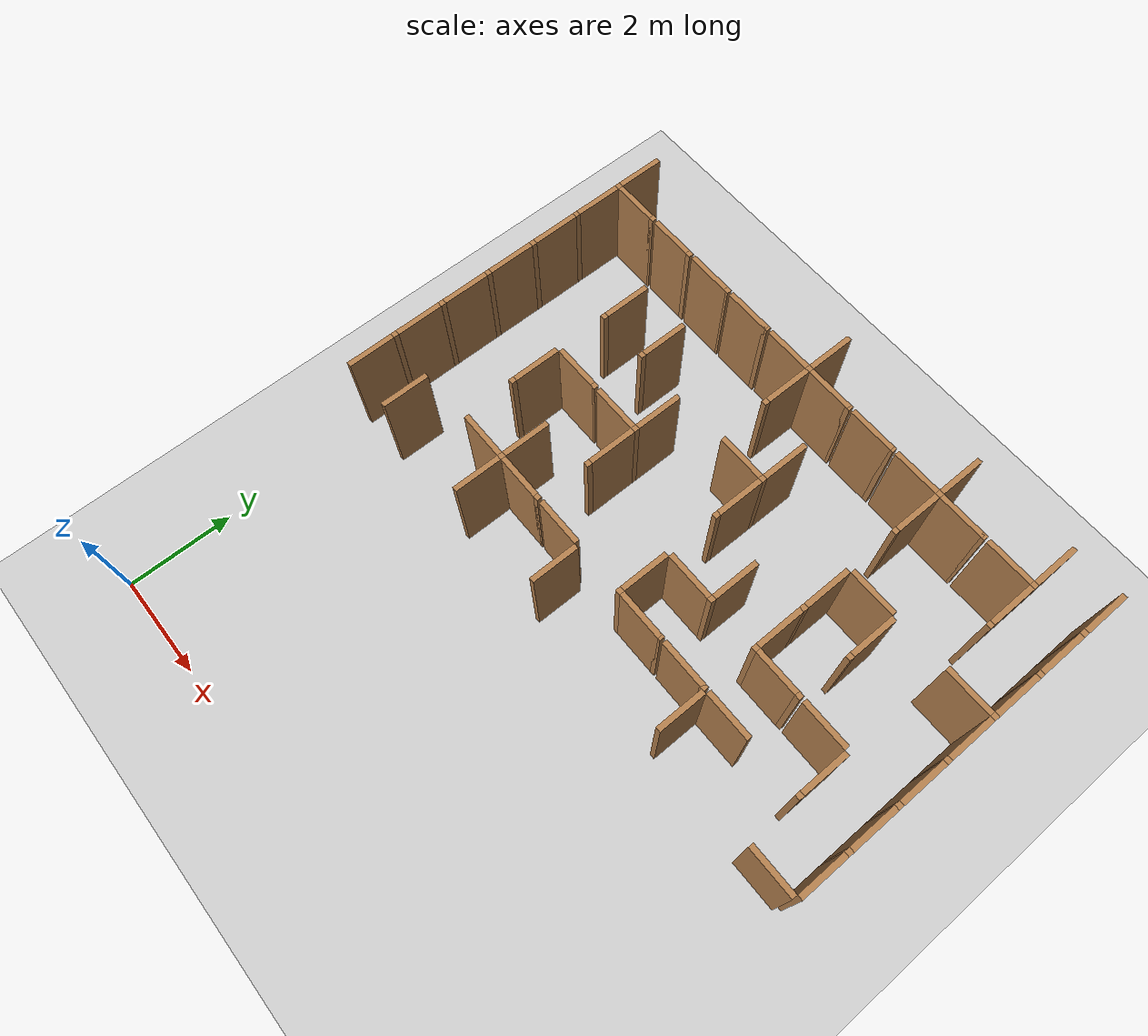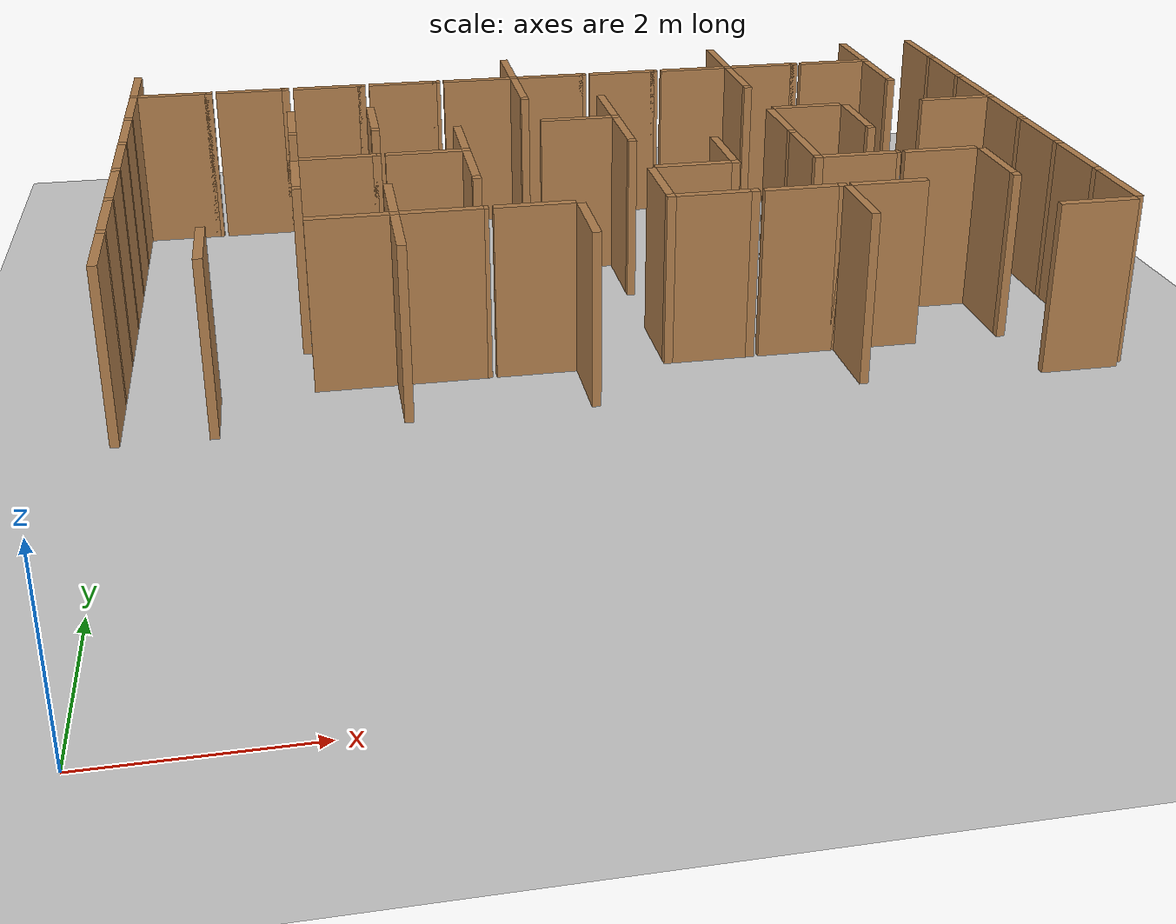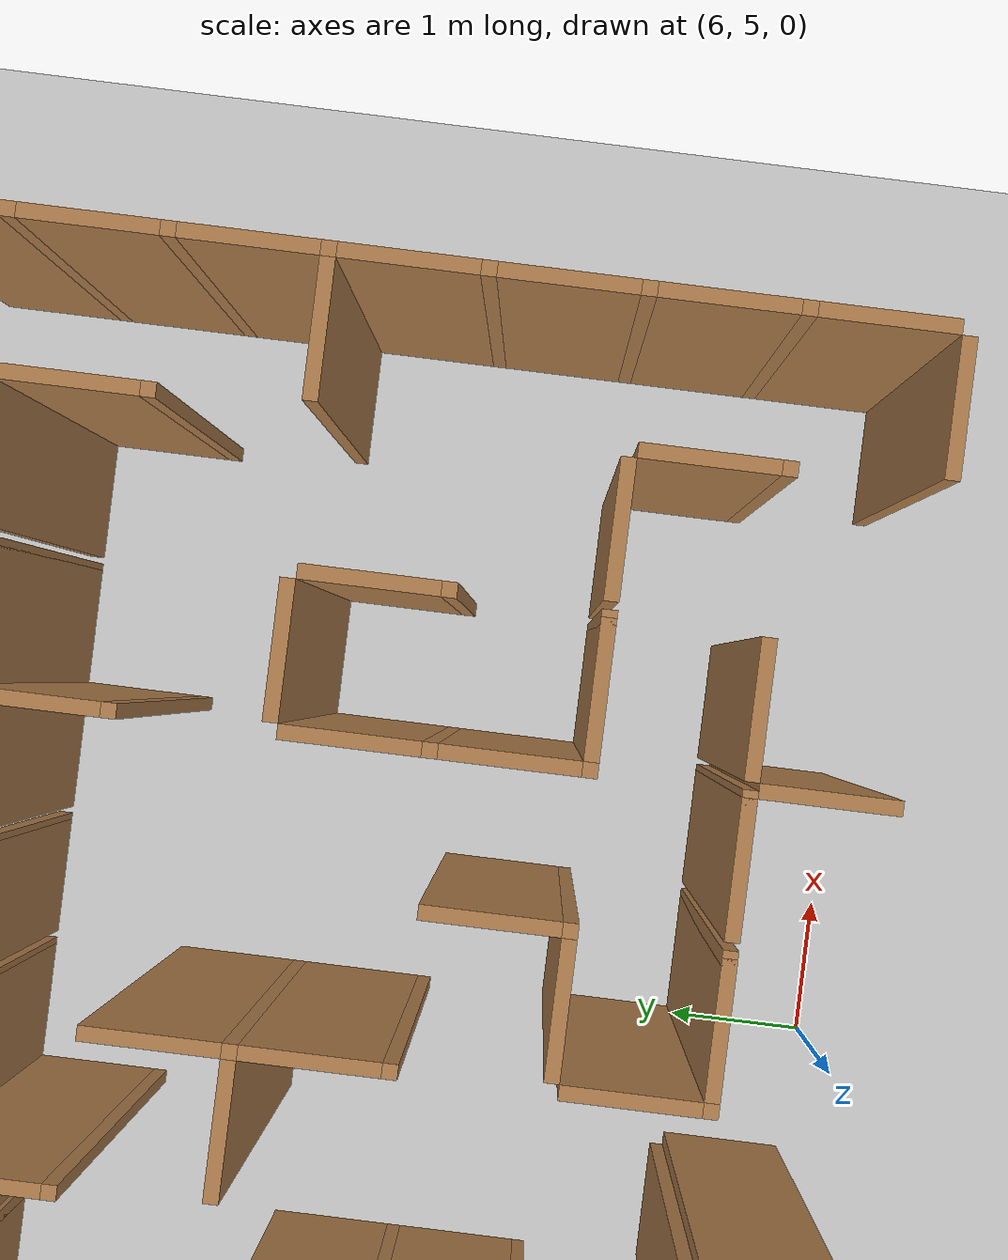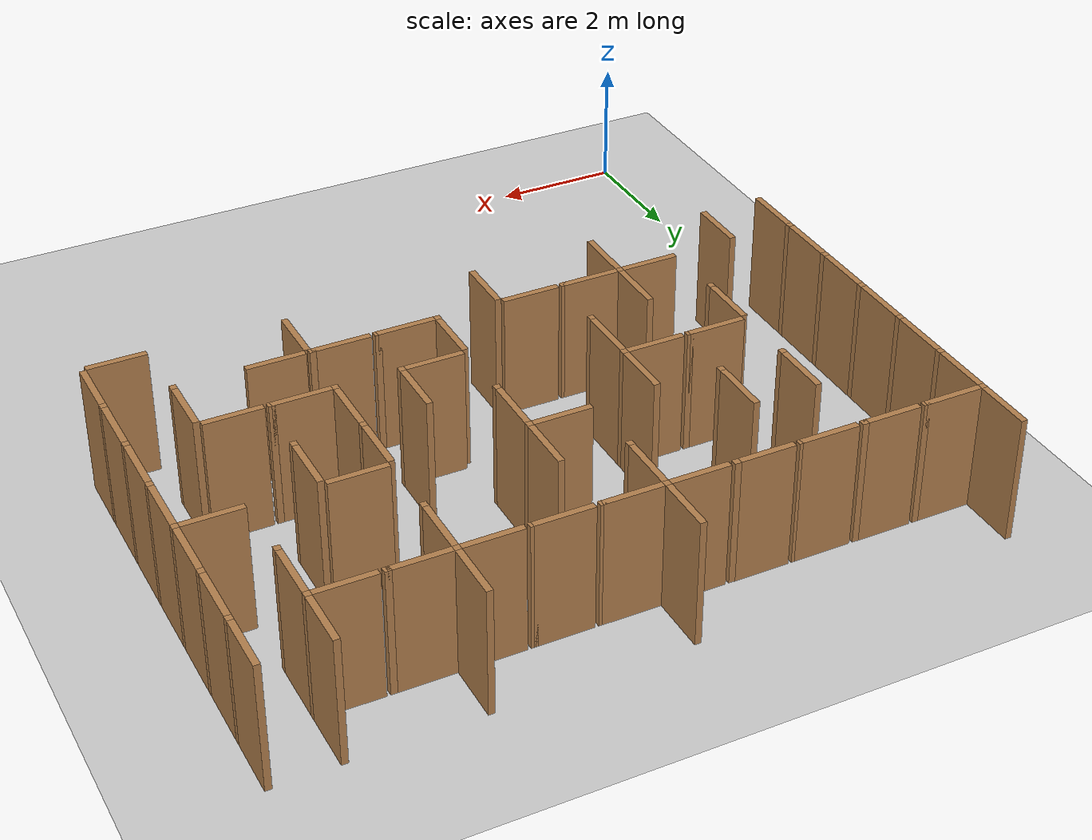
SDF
<sdf version="1.6">
 <world name="default">
  <include><uri>model://sun</uri></include>
  <model name="ground_plane">
   <static>true</static>
   <link name="link">
    <collision name="collision"><geometry><plane><size>12.0 12.0</size></plane></geometry></collision>
    <visual name="visual">
     <cast_shadows>false</cast_shadows>
     <geometry><plane><size>12.0 12.0</size></plane></geometry>
     <material>
      <script><uri>file://media/materials/scripts/gazebo.material</uri><name>Gazebo/Grey</name></script>
     </material>
    </visual>
   </link>
   <pose>6.0 6.0 0 0 0 0</pose>
  </model>
  <model name="vwall_5_0">
   <pose>0.0 5.5 1.0 0 0 0</pose>
   <link name="link">
    <collision name="collision"><geometry><box><size>0.1 0.9 2</size></box></geometry></collision>
    <visual name="visual">
     <geometry><box><size>0.1 0.9 2</size></box></geometry>
     <material>
      <script><uri>file://media/materials/scripts/gazebo.material</uri><name>Gazebo/Wood</name></script>
     </material>
    </visual>
   </link>
  </model>
  <model name="vwall_5_1">
   <pose>1.0 5.5 1.0 0 0 0</pose>
   <link name="link">
    <collision name="collision"><geometry><box><size>0.1 0.9 2</size></box></geometry></collision>
    <visual name="visual">
     <geometry><box><size>0.1 0.9 2</size></box></geometry>
     <material>
      <script><uri>file://media/materials/scripts/gazebo.material</uri><name>Gazebo/Wood</name></script>
     </material>
    </visual>
   </link>
  </model>
  <model name="vwall_5_3">
   <pose>3.0 5.5 1.0 0 0 0</pose>
   <link name="link">
    <collision name="collision"><geometry><box><size>0.1 0.9 2</size></box></geometry></collision>
    <visual name="visual">
     <geometry><box><size>0.1 0.9 2</size></box></geometry>
     <material>
      <script><uri>file://media/materials/scripts/gazebo.material</uri><name>Gazebo/Wood</name></script>
     </material>
    </visual>
   </link>
  </model>
  <model name="vwall_5_5">
   <pose>5.0 5.5 1.0 0 0 0</pose>
   <link name="link">
    <collision name="collision"><geometry><box><size>0.1 0.9 2</size></box></geometry></collision>
    <visual name="visual">
     <geometry><box><size>0.1 0.9 2</size></box></geometry>
     <material>
      <script><uri>file://media/materials/scripts/gazebo.material</uri><name>Gazebo/Wood</name></script>
     </material>
    </visual>
   </link>
  </model>
  <model name="vwall_5_8">
   <pose>8.0 5.5 1.0 0 0 0</pose>
   <link name="link">
    <collision name="collision"><geometry><box><size>0.1 0.9 2</size></box></geometry></collision>
    <visual name="visual">
     <geometry><box><size>0.1 0.9 2</size></box></geometry>
     <material>
      <script><uri>file://media/materials/scripts/gazebo.material</uri><name>Gazebo/Wood</name></script>
     </material>
    </visual>
   </link>
  </model>
  <model name="vwall_5_11">
   <pose>11.0 5.5 1.0 0 0 0</pose>
   <link name="link">
    <collision name="collision"><geometry><box><size>0.1 0.9 2</size></box></geometry></collision>
    <visual name="visual">
     <geometry><box><size>0.1 0.9 2</size></box></geometry>
     <material>
      <script><uri>file://media/materials/scripts/gazebo.material</uri><name>Gazebo/Wood</name></script>
     </material>
    </visual>
   </link>
  </model>
  <model name="vwall_6_0">
   <pose>0.0 6.5 1.0 0 0 0</pose>
   <link name="link">
    <collision name="collision"><geometry><box><size>0.1 0.9 2</size></box></geometry></collision>
    <visual name="visual">
     <geometry><box><size>0.1 0.9 2</size></box></geometry>
     <material>
      <script><uri>file://media/materials/scripts/gazebo.material</uri><name>Gazebo/Wood</name></script>
     </material>
    </visual>
   </link>
  </model>
  <model name="joint_0.0_6.0">
   <pose>0.0 6.0 1.0 0 0 0</pose>
   <link name="link">
    <collision name="collision"><geometry><box><size>0.1 0.1 2</size></box></geometry></collision>
    <visual name="visual">
     <geometry><box><size>0.1 0.1 2</size></box></geometry>
     <material>
      <script><uri>file://media/materials/scripts/gazebo.material</uri><name>Gazebo/Wood</name></script>
     </material>
    </visual>
   </link>
  </model>
  <model name="vwall_6_3">
   <pose>3.0 6.5 1.0 0 0 0</pose>
   <link name="link">
    <collision name="collision"><geometry><box><size>0.1 0.9 2</size></box></geometry></collision>
    <visual name="visual">
     <geometry><box><size>0.1 0.9 2</size></box></geometry>
     <material>
      <script><uri>file://media/materials/scripts/gazebo.material</uri><name>Gazebo/Wood</name></script>
     </material>
    </visual>
   </link>
  </model>
  <model name="joint_3.0_6.0">
   <pose>3.0 6.0 1.0 0 0 0</pose>
   <link name="link">
    <collision name="collision"><geometry><box><size>0.1 0.1 2</size></box></geometry></collision>
    <visual name="visual">
     <geometry><box><size>0.1 0.1 2</size></box></geometry>
     <material>
      <script><uri>file://media/materials/scripts/gazebo.material</uri><name>Gazebo/Wood</name></script>
     </material>
    </visual>
   </link>
  </model>
  <model name="vwall_6_6">
   <pose>6.0 6.5 1.0 0 0 0</pose>
   <link name="link">
    <collision name="collision"><geometry><box><size>0.1 0.9 2</size></box></geometry></collision>
    <visual name="visual">
     <geometry><box><size>0.1 0.9 2</size></box></geometry>
     <material>
      <script><uri>file://media/materials/scripts/gazebo.material</uri><name>Gazebo/Wood</name></script>
     </material>
    </visual>
   </link>
  </model>
  <model name="joint_6.0_6.0">
   <pose>6.0 6.0 1.0 0 0 0</pose>
   <link name="link">
    <collision name="collision"><geometry><box><size>0.1 0.1 2</size></box></geometry></collision>
    <visual name="visual">
     <geometry><box><size>0.1 0.1 2</size></box></geometry>
     <material>
      <script><uri>file://media/materials/scripts/gazebo.material</uri><name>Gazebo/Wood</name></script>
     </material>
    </visual>
   </link>
  </model>
  <model name="vwall_6_10">
   <pose>10.0 6.5 1.0 0 0 0</pose>
   <link name="link">
    <collision name="collision"><geometry><box><size>0.1 0.9 2</size></box></geometry></collision>
    <visual name="visual">
     <geometry><box><size>0.1 0.9 2</size></box></geometry>
     <material>
      <script><uri>file://media/materials/scripts/gazebo.material</uri><name>Gazebo/Wood</name></script>
     </material>
    </visual>
   </link>
  </model>
  <model name="joint_10.0_6.0">
   <pose>10.0 6.0 1.0 0 0 0</pose>
   <link name="link">
    <collision name="collision"><geometry><box><size>0.1 0.1 2</size></box></geometry></collision>
    <visual name="visual">
     <geometry><box><size>0.1 0.1 2</size></box></geometry>
     <material>
      <script><uri>file://media/materials/scripts/gazebo.material</uri><name>Gazebo/Wood</name></script>
     </material>
    </visual>
   </link>
  </model>
  <model name="vwall_6_11">
   <pose>11.0 6.5 1.0 0 0 0</pose>
   <link name="link">
    <collision name="collision"><geometry><box><size>0.1 0.9 2</size></box></geometry></collision>
    <visual name="visual">
     <geometry><box><size>0.1 0.9 2</size></box></geometry>
     <material>
      <script><uri>file://media/materials/scripts/gazebo.material</uri><name>Gazebo/Wood</name></script>
     </material>
    </visual>
   </link>
  </model>
  <model name="joint_11.0_6.0">
   <pose>11.0 6.0 1.0 0 0 0</pose>
   <link name="link">
    <collision name="collision"><geometry><box><size>0.1 0.1 2</size></box></geometry></collision>
    <visual name="visual">
     <geometry><box><size>0.1 0.1 2</size></box></geometry>
     <material>
      <script><uri>file://media/materials/scripts/gazebo.material</uri><name>Gazebo/Wood</name></script>
     </material>
    </visual>
   </link>
  </model>
  <model name="vwall_7_0">
   <pose>0.0 7.5 1.0 0 0 0</pose>
   <link name="link">
    <collision name="collision"><geometry><box><size>0.1 0.9 2</size></box></geometry></collision>
    <visual name="visual">
     <geometry><box><size>0.1 0.9 2</size></box></geometry>
     <material>
      <script><uri>file://media/materials/scripts/gazebo.material</uri><name>Gazebo/Wood</name></script>
     </material>
    </visual>
   </link>
  </model>
  <model name="joint_0.0_7.0">
   <pose>0.0 7.0 1.0 0 0 0</pose>
   <link name="link">
    <collision name="collision"><geometry><box><size>0.1 0.1 2</size></box></geometry></collision>
    <visual name="visual">
     <geometry><box><size>0.1 0.1 2</size></box></geometry>
     <material>
      <script><uri>file://media/materials/scripts/gazebo.material</uri><name>Gazebo/Wood</name></script>
     </material>
    </visual>
   </link>
  </model>
  <model name="vwall_7_2">
   <pose>2.0 7.5 1.0 0 0 0</pose>
   <link name="link">
    <collision name="collision"><geometry><box><size>0.1 0.9 2</size></box></geometry></collision>
    <visual name="visual">
     <geometry><box><size>0.1 0.9 2</size></box></geometry>
     <material>
      <script><uri>file://media/materials/scripts/gazebo.material</uri><name>Gazebo/Wood</name></script>
     </material>
    </visual>
   </link>
  </model>
  <model name="joint_2.0_7.0">
   <pose>2.0 7.0 1.0 0 0 0</pose>
   <link name="link">
    <collision name="collision"><geometry><box><size>0.1 0.1 2</size></box></geometry></collision>
    <visual name="visual">
     <geometry><box><size>0.1 0.1 2</size></box></geometry>
     <material>
      <script><uri>file://media/materials/scripts/gazebo.material</uri><name>Gazebo/Wood</name></script>
     </material>
    </visual>
   </link>
  </model>
  <model name="vwall_7_4">
   <pose>4.0 7.5 1.0 0 0 0</pose>
   <link name="link">
    <collision name="collision"><geometry><box><size>0.1 0.9 2</size></box></geometry></collision>
    <visual name="visual">
     <geometry><box><size>0.1 0.9 2</size></box></geometry>
     <material>
      <script><uri>file://media/materials/scripts/gazebo.material</uri><name>Gazebo/Wood</name></script>
     </material>
    </visual>
   </link>
  </model>
  <model name="joint_4.0_7.0">
   <pose>4.0 7.0 1.0 0 0 0</pose>
   <link name="link">
    <collision name="collision"><geometry><box><size>0.1 0.1 2</size></box></geometry></collision>
    <visual name="visual">
     <geometry><box><size>0.1 0.1 2</size></box></geometry>
     <material>
      <script><uri>file://media/materials/scripts/gazebo.material</uri><name>Gazebo/Wood</name></script>
     </material>
    </visual>
   </link>
  </model>
  <model name="vwall_7_7">
   <pose>7.0 7.5 1.0 0 0 0</pose>
   <link name="link">
    <collision name="collision"><geometry><box><size>0.1 0.9 2</size></box></geometry></collision>
    <visual name="visual">
     <geometry><box><size>0.1 0.9 2</size></box></geometry>
     <material>
      <script><uri>file://media/materials/scripts/gazebo.material</uri><name>Gazebo/Wood</name></script>
     </material>
    </visual>
   </link>
  </model>
  <model name="joint_7.0_7.0">
   <pose>7.0 7.0 1.0 0 0 0</pose>
   <link name="link">
    <collision name="collision"><geometry><box><size>0.1 0.1 2</size></box></geometry></collision>
    <visual name="visual">
     <geometry><box><size>0.1 0.1 2</size></box></geometry>
     <material>
      <script><uri>file://media/materials/scripts/gazebo.material</uri><name>Gazebo/Wood</name></script>
     </material>
    </visual>
   </link>
  </model>
  <model name="vwall_7_8">
   <pose>8.0 7.5 1.0 0 0 0</pose>
   <link name="link">
    <collision name="collision"><geometry><box><size>0.1 0.9 2</size></box></geometry></collision>
    <visual name="visual">
     <geometry><box><size>0.1 0.9 2</size></box></geometry>
     <material>
      <script><uri>file://media/materials/scripts/gazebo.material</uri><name>Gazebo/Wood</name></script>
     </material>
    </visual>
   </link>
  </model>
  <model name="joint_8.0_7.0">
   <pose>8.0 7.0 1.0 0 0 0</pose>
   <link name="link">
    <collision name="collision"><geometry><box><size>0.1 0.1 2</size></box></geometry></collision>
    <visual name="visual">
     <geometry><box><size>0.1 0.1 2</size></box></geometry>
     <material>
      <script><uri>file://media/materials/scripts/gazebo.material</uri><name>Gazebo/Wood</name></script>
     </material>
    </visual>
   </link>
  </model>
  <model name="vwall_7_11">
   <pose>11.0 7.5 1.0 0 0 0</pose>
   <link name="link">
    <collision name="collision"><geometry><box><size>0.1 0.9 2</size></box></geometry></collision>
    <visual name="visual">
     <geometry><box><size>0.1 0.9 2</size></box></geometry>
     <material>
      <script><uri>file://media/materials/scripts/gazebo.material</uri><name>Gazebo/Wood</name></script>
     </material>
    </visual>
   </link>
  </model>
  <model name="joint_11.0_7.0">
   <pose>11.0 7.0 1.0 0 0 0</pose>
   <link name="link">
    <collision name="collision"><geometry><box><size>0.1 0.1 2</size></box></geometry></collision>
    <visual name="visual">
     <geometry><box><size>0.1 0.1 2</size></box></geometry>
     <material>
      <script><uri>file://media/materials/scripts/gazebo.material</uri><name>Gazebo/Wood</name></script>
     </material>
    </visual>
   </link>
  </model>
  <model name="vwall_8_0">
   <pose>0.0 8.5 1.0 0 0 0</pose>
   <link name="link">
    <collision name="collision"><geometry><box><size>0.1 0.9 2</size></box></geometry></collision>
    <visual name="visual">
     <geometry><box><size>0.1 0.9 2</size></box></geometry>
     <material>
      <script><uri>file://media/materials/scripts/gazebo.material</uri><name>Gazebo/Wood</name></script>
     </material>
    </visual>
   </link>
  </model>
  <model name="joint_0.0_8.0">
   <pose>0.0 8.0 1.0 0 0 0</pose>
   <link name="link">
    <collision name="collision"><geometry><box><size>0.1 0.1 2</size></box></geometry></collision>
    <visual name="visual">
     <geometry><box><size>0.1 0.1 2</size></box></geometry>
     <material>
      <script><uri>file://media/materials/scripts/gazebo.material</uri><name>Gazebo/Wood</name></script>
     </material>
    </visual>
   </link>
  </model>
  <model name="vwall_8_4">
   <pose>4.0 8.5 1.0 0 0 0</pose>
   <link name="link">
    <collision name="collision"><geometry><box><size>0.1 0.9 2</size></box></geometry></collision>
    <visual name="visual">
     <geometry><box><size>0.1 0.9 2</size></box></geometry>
     <material>
      <script><uri>file://media/materials/scripts/gazebo.material</uri><name>Gazebo/Wood</name></script>
     </material>
    </visual>
   </link>
  </model>
  <model name="joint_4.0_8.0">
   <pose>4.0 8.0 1.0 0 0 0</pose>
   <link name="link">
    <collision name="collision"><geometry><box><size>0.1 0.1 2</size></box></geometry></collision>
    <visual name="visual">
     <geometry><box><size>0.1 0.1 2</size></box></geometry>
     <material>
      <script><uri>file://media/materials/scripts/gazebo.material</uri><name>Gazebo/Wood</name></script>
     </material>
    </visual>
   </link>
  </model>
  <model name="vwall_8_6">
   <pose>6.0 8.5 1.0 0 0 0</pose>
   <link name="link">
    <collision name="collision"><geometry><box><size>0.1 0.9 2</size></box></geometry></collision>
    <visual name="visual">
     <geometry><box><size>0.1 0.9 2</size></box></geometry>
     <material>
      <script><uri>file://media/materials/scripts/gazebo.material</uri><name>Gazebo/Wood</name></script>
     </material>
    </visual>
   </link>
  </model>
  <model name="joint_6.0_8.0">
   <pose>6.0 8.0 1.0 0 0 0</pose>
   <link name="link">
    <collision name="collision"><geometry><box><size>0.1 0.1 2</size></box></geometry></collision>
    <visual name="visual">
     <geometry><box><size>0.1 0.1 2</size></box></geometry>
     <material>
      <script><uri>file://media/materials/scripts/gazebo.material</uri><name>Gazebo/Wood</name></script>
     </material>
    </visual>
   </link>
  </model>
  <model name="vwall_8_8">
   <pose>8.0 8.5 1.0 0 0 0</pose>
   <link name="link">
    <collision name="collision"><geometry><box><size>0.1 0.9 2</size></box></geometry></collision>
    <visual name="visual">
     <geometry><box><size>0.1 0.9 2</size></box></geometry>
     <material>
      <script><uri>file://media/materials/scripts/gazebo.material</uri><name>Gazebo/Wood</name></script>
     </material>
    </visual>
   </link>
  </model>
  <model name="joint_8.0_8.0">
   <pose>8.0 8.0 1.0 0 0 0</pose>
   <link name="link">
    <collision name="collision"><geometry><box><size>0.1 0.1 2</size></box></geometry></collision>
    <visual name="visual">
     <geometry><box><size>0.1 0.1 2</size></box></geometry>
     <material>
      <script><uri>file://media/materials/scripts/gazebo.material</uri><name>Gazebo/Wood</name></script>
     </material>
    </visual>
   </link>
  </model>
  <model name="vwall_8_9">
   <pose>9.0 8.5 1.0 0 0 0</pose>
   <link name="link">
    <collision name="collision"><geometry><box><size>0.1 0.9 2</size></box></geometry></collision>
    <visual name="visual">
     <geometry><box><size>0.1 0.9 2</size></box></geometry>
     <material>
      <script><uri>file://media/materials/scripts/gazebo.material</uri><name>Gazebo/Wood</name></script>
     </material>
    </visual>
   </link>
  </model>
  <model name="joint_9.0_8.0">
   <pose>9.0 8.0 1.0 0 0 0</pose>
   <link name="link">
    <collision name="collision"><geometry><box><size>0.1 0.1 2</size></box></geometry></collision>
    <visual name="visual">
     <geometry><box><size>0.1 0.1 2</size></box></geometry>
     <material>
      <script><uri>file://media/materials/scripts/gazebo.material</uri><name>Gazebo/Wood</name></script>
     </material>
    </visual>
   </link>
  </model>
  <model name="vwall_8_11">
   <pose>11.0 8.5 1.0 0 0 0</pose>
   <link name="link">
    <collision name="collision"><geometry><box><size>0.1 0.9 2</size></box></geometry></collision>
    <visual name="visual">
     <geometry><box><size>0.1 0.9 2</size></box></geometry>
     <material>
      <script><uri>file://media/materials/scripts/gazebo.material</uri><name>Gazebo/Wood</name></script>
     </material>
    </visual>
   </link>
  </model>
  <model name="joint_11.0_8.0">
   <pose>11.0 8.0 1.0 0 0 0</pose>
   <link name="link">
    <collision name="collision"><geometry><box><size>0.1 0.1 2</size></box></geometry></collision>
    <visual name="visual">
     <geometry><box><size>0.1 0.1 2</size></box></geometry>
     <material>
      <script><uri>file://media/materials/scripts/gazebo.material</uri><name>Gazebo/Wood</name></script>
     </material>
    </visual>
   </link>
  </model>
  <model name="vwall_9_0">
   <pose>0.0 9.5 1.0 0 0 0</pose>
   <link name="link">
    <collision name="collision"><geometry><box><size>0.1 0.9 2</size></box></geometry></collision>
    <visual name="visual">
     <geometry><box><size>0.1 0.9 2</size></box></geometry>
     <material>
      <script><uri>file://media/materials/scripts/gazebo.material</uri><name>Gazebo/Wood</name></script>
     </material>
    </visual>
   </link>
  </model>
  <model name="joint_0.0_9.0">
   <pose>0.0 9.0 1.0 0 0 0</pose>
   <link name="link">
    <collision name="collision"><geometry><box><size>0.1 0.1 2</size></box></geometry></collision>
    <visual name="visual">
     <geometry><box><size>0.1 0.1 2</size></box></geometry>
     <material>
      <script><uri>file://media/materials/scripts/gazebo.material</uri><name>Gazebo/Wood</name></script>
     </material>
    </visual>
   </link>
  </model>
  <model name="vwall_9_2">
   <pose>2.0 9.5 1.0 0 0 0</pose>
   <link name="link">
    <collision name="collision"><geometry><box><size>0.1 0.9 2</size></box></geometry></collision>
    <visual name="visual">
     <geometry><box><size>0.1 0.9 2</size></box></geometry>
     <material>
      <script><uri>file://media/materials/scripts/gazebo.material</uri><name>Gazebo/Wood</name></script>
     </material>
    </visual>
   </link>
  </model>
  <model name="joint_2.0_9.0">
   <pose>2.0 9.0 1.0 0 0 0</pose>
   <link name="link">
    <collision name="collision"><geometry><box><size>0.1 0.1 2</size></box></geometry></collision>
    <visual name="visual">
     <geometry><box><size>0.1 0.1 2</size></box></geometry>
     <material>
      <script><uri>file://media/materials/scripts/gazebo.material</uri><name>Gazebo/Wood</name></script>
     </material>
    </visual>
   </link>
  </model>
  <model name="vwall_9_3">
   <pose>3.0 9.5 1.0 0 0 0</pose>
   <link name="link">
    <collision name="collision"><geometry><box><size>0.1 0.9 2</size></box></geometry></collision>
    <visual name="visual">
     <geometry><box><size>0.1 0.9 2</size></box></geometry>
     <material>
      <script><uri>file://media/materials/scripts/gazebo.material</uri><name>Gazebo/Wood</name></script>
     </material>
    </visual>
   </link>
  </model>
  <model name="joint_3.0_9.0">
   <pose>3.0 9.0 1.0 0 0 0</pose>
   <link name="link">
    <collision name="collision"><geometry><box><size>0.1 0.1 2</size></box></geometry></collision>
    <visual name="visual">
     <geometry><box><size>0.1 0.1 2</size></box></geometry>
     <material>
      <script><uri>file://media/materials/scripts/gazebo.material</uri><name>Gazebo/Wood</name></script>
     </material>
    </visual>
   </link>
  </model>
  <model name="vwall_9_6">
   <pose>6.0 9.5 1.0 0 0 0</pose>
   <link name="link">
    <collision name="collision"><geometry><box><size>0.1 0.9 2</size></box></geometry></collision>
    <visual name="visual">
     <geometry><box><size>0.1 0.9 2</size></box></geometry>
     <material>
      <script><uri>file://media/materials/scripts/gazebo.material</uri><name>Gazebo/Wood</name></script>
     </material>
    </visual>
   </link>
  </model>
  <model name="joint_6.0_9.0">
   <pose>6.0 9.0 1.0 0 0 0</pose>
   <link name="link">
    <collision name="collision"><geometry><box><size>0.1 0.1 2</size></box></geometry></collision>
    <visual name="visual">
     <geometry><box><size>0.1 0.1 2</size></box></geometry>
     <material>
      <script><uri>file://media/materials/scripts/gazebo.material</uri><name>Gazebo/Wood</name></script>
     </material>
    </visual>
   </link>
  </model>
  <model name="vwall_9_11">
   <pose>11.0 9.5 1.0 0 0 0</pose>
   <link name="link">
    <collision name="collision"><geometry><box><size>0.1 0.9 2</size></box></geometry></collision>
    <visual name="visual">
     <geometry><box><size>0.1 0.9 2</size></box></geometry>
     <material>
      <script><uri>file://media/materials/scripts/gazebo.material</uri><name>Gazebo/Wood</name></script>
     </material>
    </visual>
   </link>
  </model>
  <model name="joint_11.0_9.0">
   <pose>11.0 9.0 1.0 0 0 0</pose>
   <link name="link">
    <collision name="collision"><geometry><box><size>0.1 0.1 2</size></box></geometry></collision>
    <visual name="visual">
     <geometry><box><size>0.1 0.1 2</size></box></geometry>
     <material>
      <script><uri>file://media/materials/scripts/gazebo.material</uri><name>Gazebo/Wood</name></script>
     </material>
    </visual>
   </link>
  </model>
  <model name="vwall_10_0">
   <pose>0.0 10.5 1.0 0 0 0</pose>
   <link name="link">
    <collision name="collision"><geometry><box><size>0.1 0.9 2</size></box></geometry></collision>
    <visual name="visual">
     <geometry><box><size>0.1 0.9 2</size></box></geometry>
     <material>
      <script><uri>file://media/materials/scripts/gazebo.material</uri><name>Gazebo/Wood</name></script>
     </material>
    </visual>
   </link>
  </model>
  <model name="joint_0.0_10.0">
   <pose>0.0 10.0 1.0 0 0 0</pose>
   <link name="link">
    <collision name="collision"><geometry><box><size>0.1 0.1 2</size></box></geometry></collision>
    <visual name="visual">
     <geometry><box><size>0.1 0.1 2</size></box></geometry>
     <material>
      <script><uri>file://media/materials/scripts/gazebo.material</uri><name>Gazebo/Wood</name></script>
     </material>
    </visual>
   </link>
  </model>
  <model name="vwall_10_5">
   <pose>5.0 10.5 1.0 0 0 0</pose>
   <link name="link">
    <collision name="collision"><geometry><box><size>0.1 0.9 2</size></box></geometry></collision>
    <visual name="visual">
     <geometry><box><size>0.1 0.9 2</size></box></geometry>
     <material>
      <script><uri>file://media/materials/scripts/gazebo.material</uri><name>Gazebo/Wood</name></script>
     </material>
    </visual>
   </link>
  </model>
  <model name="joint_5.0_10.0">
   <pose>5.0 10.0 1.0 0 0 0</pose>
   <link name="link">
    <collision name="collision"><geometry><box><size>0.1 0.1 2</size></box></geometry></collision>
    <visual name="visual">
     <geometry><box><size>0.1 0.1 2</size></box></geometry>
     <material>
      <script><uri>file://media/materials/scripts/gazebo.material</uri><name>Gazebo/Wood</name></script>
     </material>
    </visual>
   </link>
  </model>
  <model name="vwall_10_8">
   <pose>8.0 10.5 1.0 0 0 0</pose>
   <link name="link">
    <collision name="collision"><geometry><box><size>0.1 0.9 2</size></box></geometry></collision>
    <visual name="visual">
     <geometry><box><size>0.1 0.9 2</size></box></geometry>
     <material>
      <script><uri>file://media/materials/scripts/gazebo.material</uri><name>Gazebo/Wood</name></script>
     </material>
    </visual>
   </link>
  </model>
  <model name="joint_8.0_10.0">
   <pose>8.0 10.0 1.0 0 0 0</pose>
   <link name="link">
    <collision name="collision"><geometry><box><size>0.1 0.1 2</size></box></geometry></collision>
    <visual name="visual">
     <geometry><box><size>0.1 0.1 2</size></box></geometry>
     <material>
      <script><uri>file://media/materials/scripts/gazebo.material</uri><name>Gazebo/Wood</name></script>
     </material>
    </visual>
   </link>
  </model>
  <model name="vwall_10_10">
   <pose>10.0 10.5 1.0 0 0 0</pose>
   <link name="link">
    <collision name="collision"><geometry><box><size>0.1 0.9 2</size></box></geometry></collision>
    <visual name="visual">
     <geometry><box><size>0.1 0.9 2</size></box></geometry>
     <material>
      <script><uri>file://media/materials/scripts/gazebo.material</uri><name>Gazebo/Wood</name></script>
     </material>
    </visual>
   </link>
  </model>
  <model name="joint_10.0_10.0">
   <pose>10.0 10.0 1.0 0 0 0</pose>
   <link name="link">
    <collision name="collision"><geometry><box><size>0.1 0.1 2</size></box></geometry></collision>
    <visual name="visual">
     <geometry><box><size>0.1 0.1 2</size></box></geometry>
     <material>
      <script><uri>file://media/materials/scripts/gazebo.material</uri><name>Gazebo/Wood</name></script>
     </material>
    </visual>
   </link>
  </model>
  <model name="vwall_10_11">
   <pose>11.0 10.5 1.0 0 0 0</pose>
   <link name="link">
    <collision name="collision"><geometry><box><size>0.1 0.9 2</size></box></geometry></collision>
    <visual name="visual">
     <geometry><box><size>0.1 0.9 2</size></box></geometry>
     <material>
      <script><uri>file://media/materials/scripts/gazebo.material</uri><name>Gazebo/Wood</name></script>
     </material>
    </visual>
   </link>
  </model>
  <model name="joint_11.0_10.0">
   <pose>11.0 10.0 1.0 0 0 0</pose>
   <link name="link">
    <collision name="collision"><geometry><box><size>0.1 0.1 2</size></box></geometry></collision>
    <visual name="visual">
     <geometry><box><size>0.1 0.1 2</size></box></geometry>
     <material>
      <script><uri>file://media/materials/scripts/gazebo.material</uri><name>Gazebo/Wood</name></script>
     </material>
    </visual>
   </link>
  </model>
  <model name="vwall_11_0">
   <pose>0.0 11.5 1.0 0 0 0</pose>
   <link name="link">
    <collision name="collision"><geometry><box><size>0.1 0.9 2</size></box></geometry></collision>
    <visual name="visual">
     <geometry><box><size>0.1 0.9 2</size></box></geometry>
     <material>
      <script><uri>file://media/materials/scripts/gazebo.material</uri><name>Gazebo/Wood</name></script>
     </material>
    </visual>
   </link>
  </model>
  <model name="joint_0.0_11.0">
   <pose>0.0 11.0 1.0 0 0 0</pose>
   <link name="link">
    <collision name="collision"><geometry><box><size>0.1 0.1 2</size></box></geometry></collision>
    <visual name="visual">
     <geometry><box><size>0.1 0.1 2</size></box></geometry>
     <material>
      <script><uri>file://media/materials/scripts/gazebo.material</uri><name>Gazebo/Wood</name></script>
     </material>
    </visual>
   </link>
  </model>
  <model name="vwall_11_5">
   <pose>5.0 11.5 1.0 0 0 0</pose>
   <link name="link">
    <collision name="collision"><geometry><box><size>0.1 0.9 2</size></box></geometry></collision>
    <visual name="visual">
     <geometry><box><size>0.1 0.9 2</size></box></geometry>
     <material>
      <script><uri>file://media/materials/scripts/gazebo.material</uri><name>Gazebo/Wood</name></script>
     </material>
    </visual>
   </link>
  </model>
  <model name="joint_5.0_11.0">
   <pose>5.0 11.0 1.0 0 0 0</pose>
   <link name="link">
    <collision name="collision"><geometry><box><size>0.1 0.1 2</size></box></geometry></collision>
    <visual name="visual">
     <geometry><box><size>0.1 0.1 2</size></box></geometry>
     <material>
      <script><uri>file://media/materials/scripts/gazebo.material</uri><name>Gazebo/Wood</name></script>
     </material>
    </visual>
   </link>
  </model>
  <model name="vwall_11_8">
   <pose>8.0 11.5 1.0 0 0 0</pose>
   <link name="link">
    <collision name="collision"><geometry><box><size>0.1 0.9 2</size></box></geometry></collision>
    <visual name="visual">
     <geometry><box><size>0.1 0.9 2</size></box></geometry>
     <material>
      <script><uri>file://media/materials/scripts/gazebo.material</uri><name>Gazebo/Wood</name></script>
     </material>
    </visual>
   </link>
  </model>
  <model name="joint_8.0_11.0">
   <pose>8.0 11.0 1.0 0 0 0</pose>
   <link name="link">
    <collision name="collision"><geometry><box><size>0.1 0.1 2</size></box></geometry></collision>
    <visual name="visual">
     <geometry><box><size>0.1 0.1 2</size></box></geometry>
     <material>
      <script><uri>file://media/materials/scripts/gazebo.material</uri><name>Gazebo/Wood</name></script>
     </material>
    </visual>
   </link>
  </model>
  <model name="vwall_11_10">
   <pose>10.0 11.5 1.0 0 0 0</pose>
   <link name="link">
    <collision name="collision"><geometry><box><size>0.1 0.9 2</size></box></geometry></collision>
    <visual name="visual">
     <geometry><box><size>0.1 0.9 2</size></box></geometry>
     <material>
      <script><uri>file://media/materials/scripts/gazebo.material</uri><name>Gazebo/Wood</name></script>
     </material>
    </visual>
   </link>
  </model>
  <model name="joint_10.0_11.0">
   <pose>10.0 11.0 1.0 0 0 0</pose>
   <link name="link">
    <collision name="collision"><geometry><box><size>0.1 0.1 2</size></box></geometry></collision>
    <visual name="visual">
     <geometry><box><size>0.1 0.1 2</size></box></geometry>
     <material>
      <script><uri>file://media/materials/scripts/gazebo.material</uri><name>Gazebo/Wood</name></script>
     </material>
    </visual>
   </link>
  </model>
  <model name="vwall_11_11">
   <pose>11.0 11.5 1.0 0 0 0</pose>
   <link name="link">
    <collision name="collision"><geometry><box><size>0.1 0.9 2</size></box></geometry></collision>
    <visual name="visual">
     <geometry><box><size>0.1 0.9 2</size></box></geometry>
     <material>
      <script><uri>file://media/materials/scripts/gazebo.material</uri><name>Gazebo/Wood</name></script>
     </material>
    </visual>
   </link>
  </model>
  <model name="joint_11.0_11.0">
   <pose>11.0 11.0 1.0 0 0 0</pose>
   <link name="link">
    <collision name="collision"><geometry><box><size>0.1 0.1 2</size></box></geometry></collision>
    <visual name="visual">
     <geometry><box><size>0.1 0.1 2</size></box></geometry>
     <material>
      <script><uri>file://media/materials/scripts/gazebo.material</uri><name>Gazebo/Wood</name></script>
     </material>
    </visual>
   </link>
  </model>
  <model name="hwall_5_10">
   <pose>10.5 5.0 1.0 0 0 0</pose>
   <link name="link">
    <collision name="collision"><geometry><box><size>0.9 0.1 2</size></box></geometry></collision>
    <visual name="visual">
     <geometry><box><size>0.9 0.1 2</size></box></geometry>
     <material>
      <script><uri>file://media/materials/scripts/gazebo.material</uri><name>Gazebo/Wood</name></script>
     </material>
    </visual>
   </link>
  </model>
  <model name="hwall_6_2">
   <pose>2.5 6.0 1.0 0 0 0</pose>
   <link name="link">
    <collision name="collision"><geometry><box><size>0.9 0.1 2</size></box></geometry></collision>
    <visual name="visual">
     <geometry><box><size>0.9 0.1 2</size></box></geometry>
     <material>
      <script><uri>file://media/materials/scripts/gazebo.material</uri><name>Gazebo/Wood</name></script>
     </material>
    </visual>
   </link>
  </model>
  <model name="hwall_6_3">
   <pose>3.5 6.0 1.0 0 0 0</pose>
   <link name="link">
    <collision name="collision"><geometry><box><size>0.9 0.1 2</size></box></geometry></collision>
    <visual name="visual">
     <geometry><box><size>0.9 0.1 2</size></box></geometry>
     <material>
      <script><uri>file://media/materials/scripts/gazebo.material</uri><name>Gazebo/Wood</name></script>
     </material>
    </visual>
   </link>
  </model>
  <model name="joint_3.95_6.0">
   <pose>3.95 6.0 1.0 0 0 0</pose>
   <link name="link">
    <collision name="collision"><geometry><box><size>0.1 0.1 2</size></box></geometry></collision>
    <visual name="visual">
     <geometry><box><size>0.1 0.1 2</size></box></geometry>
     <material>
      <script><uri>file://media/materials/scripts/gazebo.material</uri><name>Gazebo/Wood</name></script>
     </material>
    </visual>
   </link>
  </model>
  <model name="hwall_6_4">
   <pose>4.5 6.0 1.0 0 0 0</pose>
   <link name="link">
    <collision name="collision"><geometry><box><size>0.9 0.1 2</size></box></geometry></collision>
    <visual name="visual">
     <geometry><box><size>0.9 0.1 2</size></box></geometry>
     <material>
      <script><uri>file://media/materials/scripts/gazebo.material</uri><name>Gazebo/Wood</name></script>
     </material>
    </visual>
   </link>
  </model>
  <model name="hwall_6_6">
   <pose>6.5 6.0 1.0 0 0 0</pose>
   <link name="link">
    <collision name="collision"><geometry><box><size>0.9 0.1 2</size></box></geometry></collision>
    <visual name="visual">
     <geometry><box><size>0.9 0.1 2</size></box></geometry>
     <material>
      <script><uri>file://media/materials/scripts/gazebo.material</uri><name>Gazebo/Wood</name></script>
     </material>
    </visual>
   </link>
  </model>
  <model name="joint_6.95_6.0">
   <pose>6.95 6.0 1.0 0 0 0</pose>
   <link name="link">
    <collision name="collision"><geometry><box><size>0.1 0.1 2</size></box></geometry></collision>
    <visual name="visual">
     <geometry><box><size>0.1 0.1 2</size></box></geometry>
     <material>
      <script><uri>file://media/materials/scripts/gazebo.material</uri><name>Gazebo/Wood</name></script>
     </material>
    </visual>
   </link>
  </model>
  <model name="hwall_6_7">
   <pose>7.5 6.0 1.0 0 0 0</pose>
   <link name="link">
    <collision name="collision"><geometry><box><size>0.9 0.1 2</size></box></geometry></collision>
    <visual name="visual">
     <geometry><box><size>0.9 0.1 2</size></box></geometry>
     <material>
      <script><uri>file://media/materials/scripts/gazebo.material</uri><name>Gazebo/Wood</name></script>
     </material>
    </visual>
   </link>
  </model>
  <model name="joint_7.95_6.0">
   <pose>7.95 6.0 1.0 0 0 0</pose>
   <link name="link">
    <collision name="collision"><geometry><box><size>0.1 0.1 2</size></box></geometry></collision>
    <visual name="visual">
     <geometry><box><size>0.1 0.1 2</size></box></geometry>
     <material>
      <script><uri>file://media/materials/scripts/gazebo.material</uri><name>Gazebo/Wood</name></script>
     </material>
    </visual>
   </link>
  </model>
  <model name="hwall_6_8">
   <pose>8.5 6.0 1.0 0 0 0</pose>
   <link name="link">
    <collision name="collision"><geometry><box><size>0.9 0.1 2</size></box></geometry></collision>
    <visual name="visual">
     <geometry><box><size>0.9 0.1 2</size></box></geometry>
     <material>
      <script><uri>file://media/materials/scripts/gazebo.material</uri><name>Gazebo/Wood</name></script>
     </material>
    </visual>
   </link>
  </model>
  <model name="hwall_7_6">
   <pose>6.5 7.0 1.0 0 0 0</pose>
   <link name="link">
    <collision name="collision"><geometry><box><size>0.9 0.1 2</size></box></geometry></collision>
    <visual name="visual">
     <geometry><box><size>0.9 0.1 2</size></box></geometry>
     <material>
      <script><uri>file://media/materials/scripts/gazebo.material</uri><name>Gazebo/Wood</name></script>
     </material>
    </visual>
   </link>
  </model>
  <model name="hwall_7_8">
   <pose>8.5 7.0 1.0 0 0 0</pose>
   <link name="link">
    <collision name="collision"><geometry><box><size>0.9 0.1 2</size></box></geometry></collision>
    <visual name="visual">
     <geometry><box><size>0.9 0.1 2</size></box></geometry>
     <material>
      <script><uri>file://media/materials/scripts/gazebo.material</uri><name>Gazebo/Wood</name></script>
     </material>
    </visual>
   </link>
  </model>
  <model name="joint_8.95_7.0">
   <pose>8.95 7.0 1.0 0 0 0</pose>
   <link name="link">
    <collision name="collision"><geometry><box><size>0.1 0.1 2</size></box></geometry></collision>
    <visual name="visual">
     <geometry><box><size>0.1 0.1 2</size></box></geometry>
     <material>
      <script><uri>file://media/materials/scripts/gazebo.material</uri><name>Gazebo/Wood</name></script>
     </material>
    </visual>
   </link>
  </model>
  <model name="hwall_7_9">
   <pose>9.5 7.0 1.0 0 0 0</pose>
   <link name="link">
    <collision name="collision"><geometry><box><size>0.9 0.1 2</size></box></geometry></collision>
    <visual name="visual">
     <geometry><box><size>0.9 0.1 2</size></box></geometry>
     <material>
      <script><uri>file://media/materials/scripts/gazebo.material</uri><name>Gazebo/Wood</name></script>
     </material>
    </visual>
   </link>
  </model>
  <model name="hwall_8_2">
   <pose>2.5 8.0 1.0 0 0 0</pose>
   <link name="link">
    <collision name="collision"><geometry><box><size>0.9 0.1 2</size></box></geometry></collision>
    <visual name="visual">
     <geometry><box><size>0.9 0.1 2</size></box></geometry>
     <material>
      <script><uri>file://media/materials/scripts/gazebo.material</uri><name>Gazebo/Wood</name></script>
     </material>
    </visual>
   </link>
  </model>
  <model name="joint_2.95_8.0">
   <pose>2.95 8.0 1.0 0 0 0</pose>
   <link name="link">
    <collision name="collision"><geometry><box><size>0.1 0.1 2</size></box></geometry></collision>
    <visual name="visual">
     <geometry><box><size>0.1 0.1 2</size></box></geometry>
     <material>
      <script><uri>file://media/materials/scripts/gazebo.material</uri><name>Gazebo/Wood</name></script>
     </material>
    </visual>
   </link>
  </model>
  <model name="hwall_8_3">
   <pose>3.5 8.0 1.0 0 0 0</pose>
   <link name="link">
    <collision name="collision"><geometry><box><size>0.9 0.1 2</size></box></geometry></collision>
    <visual name="visual">
     <geometry><box><size>0.9 0.1 2</size></box></geometry>
     <material>
      <script><uri>file://media/materials/scripts/gazebo.material</uri><name>Gazebo/Wood</name></script>
     </material>
    </visual>
   </link>
  </model>
  <model name="hwall_9_5">
   <pose>5.5 9.0 1.0 0 0 0</pose>
   <link name="link">
    <collision name="collision"><geometry><box><size>0.9 0.1 2</size></box></geometry></collision>
    <visual name="visual">
     <geometry><box><size>0.9 0.1 2</size></box></geometry>
     <material>
      <script><uri>file://media/materials/scripts/gazebo.material</uri><name>Gazebo/Wood</name></script>
     </material>
    </visual>
   </link>
  </model>
  <model name="hwall_9_8">
   <pose>8.5 9.0 1.0 0 0 0</pose>
   <link name="link">
    <collision name="collision"><geometry><box><size>0.9 0.1 2</size></box></geometry></collision>
    <visual name="visual">
     <geometry><box><size>0.9 0.1 2</size></box></geometry>
     <material>
      <script><uri>file://media/materials/scripts/gazebo.material</uri><name>Gazebo/Wood</name></script>
     </material>
    </visual>
   </link>
  </model>
  <model name="hwall_9_10">
   <pose>10.5 9.0 1.0 0 0 0</pose>
   <link name="link">
    <collision name="collision"><geometry><box><size>0.9 0.1 2</size></box></geometry></collision>
    <visual name="visual">
     <geometry><box><size>0.9 0.1 2</size></box></geometry>
     <material>
      <script><uri>file://media/materials/scripts/gazebo.material</uri><name>Gazebo/Wood</name></script>
     </material>
    </visual>
   </link>
  </model>
  <model name="hwall_11_0">
   <pose>0.5 11.0 1.0 0 0 0</pose>
   <link name="link">
    <collision name="collision"><geometry><box><size>0.9 0.1 2</size></box></geometry></collision>
    <visual name="visual">
     <geometry><box><size>0.9 0.1 2</size></box></geometry>
     <material>
      <script><uri>file://media/materials/scripts/gazebo.material</uri><name>Gazebo/Wood</name></script>
     </material>
    </visual>
   </link>
  </model>
  <model name="joint_0.95_11.0">
   <pose>0.95 11.0 1.0 0 0 0</pose>
   <link name="link">
    <collision name="collision"><geometry><box><size>0.1 0.1 2</size></box></geometry></collision>
    <visual name="visual">
     <geometry><box><size>0.1 0.1 2</size></box></geometry>
     <material>
      <script><uri>file://media/materials/scripts/gazebo.material</uri><name>Gazebo/Wood</name></script>
     </material>
    </visual>
   </link>
  </model>
  <model name="hwall_11_1">
   <pose>1.5 11.0 1.0 0 0 0</pose>
   <link name="link">
    <collision name="collision"><geometry><box><size>0.9 0.1 2</size></box></geometry></collision>
    <visual name="visual">
     <geometry><box><size>0.9 0.1 2</size></box></geometry>
     <material>
      <script><uri>file://media/materials/scripts/gazebo.material</uri><name>Gazebo/Wood</name></script>
     </material>
    </visual>
   </link>
  </model>
  <model name="joint_1.95_11.0">
   <pose>1.95 11.0 1.0 0 0 0</pose>
   <link name="link">
    <collision name="collision"><geometry><box><size>0.1 0.1 2</size></box></geometry></collision>
    <visual name="visual">
     <geometry><box><size>0.1 0.1 2</size></box></geometry>
     <material>
      <script><uri>file://media/materials/scripts/gazebo.material</uri><name>Gazebo/Wood</name></script>
     </material>
    </visual>
   </link>
  </model>
  <model name="hwall_11_2">
   <pose>2.5 11.0 1.0 0 0 0</pose>
   <link name="link">
    <collision name="collision"><geometry><box><size>0.9 0.1 2</size></box></geometry></collision>
    <visual name="visual">
     <geometry><box><size>0.9 0.1 2</size></box></geometry>
     <material>
      <script><uri>file://media/materials/scripts/gazebo.material</uri><name>Gazebo/Wood</name></script>
     </material>
    </visual>
   </link>
  </model>
  <model name="joint_2.95_11.0">
   <pose>2.95 11.0 1.0 0 0 0</pose>
   <link name="link">
    <collision name="collision"><geometry><box><size>0.1 0.1 2</size></box></geometry></collision>
    <visual name="visual">
     <geometry><box><size>0.1 0.1 2</size></box></geometry>
     <material>
      <script><uri>file://media/materials/scripts/gazebo.material</uri><name>Gazebo/Wood</name></script>
     </material>
    </visual>
   </link>
  </model>
  <model name="hwall_11_3">
   <pose>3.5 11.0 1.0 0 0 0</pose>
   <link name="link">
    <collision name="collision"><geometry><box><size>0.9 0.1 2</size></box></geometry></collision>
    <visual name="visual">
     <geometry><box><size>0.9 0.1 2</size></box></geometry>
     <material>
      <script><uri>file://media/materials/scripts/gazebo.material</uri><name>Gazebo/Wood</name></script>
     </material>
    </visual>
   </link>
  </model>
  <model name="joint_3.95_11.0">
   <pose>3.95 11.0 1.0 0 0 0</pose>
   <link name="link">
    <collision name="collision"><geometry><box><size>0.1 0.1 2</size></box></geometry></collision>
    <visual name="visual">
     <geometry><box><size>0.1 0.1 2</size></box></geometry>
     <material>
      <script><uri>file://media/materials/scripts/gazebo.material</uri><name>Gazebo/Wood</name></script>
     </material>
    </visual>
   </link>
  </model>
  <model name="hwall_11_4">
   <pose>4.5 11.0 1.0 0 0 0</pose>
   <link name="link">
    <collision name="collision"><geometry><box><size>0.9 0.1 2</size></box></geometry></collision>
    <visual name="visual">
     <geometry><box><size>0.9 0.1 2</size></box></geometry>
     <material>
      <script><uri>file://media/materials/scripts/gazebo.material</uri><name>Gazebo/Wood</name></script>
     </material>
    </visual>
   </link>
  </model>
  <model name="hwall_11_5">
   <pose>5.5 11.0 1.0 0 0 0</pose>
   <link name="link">
    <collision name="collision"><geometry><box><size>0.9 0.1 2</size></box></geometry></collision>
    <visual name="visual">
     <geometry><box><size>0.9 0.1 2</size></box></geometry>
     <material>
      <script><uri>file://media/materials/scripts/gazebo.material</uri><name>Gazebo/Wood</name></script>
     </material>
    </visual>
   </link>
  </model>
  <model name="joint_5.95_11.0">
   <pose>5.95 11.0 1.0 0 0 0</pose>
   <link name="link">
    <collision name="collision"><geometry><box><size>0.1 0.1 2</size></box></geometry></collision>
    <visual name="visual">
     <geometry><box><size>0.1 0.1 2</size></box></geometry>
     <material>
      <script><uri>file://media/materials/scripts/gazebo.material</uri><name>Gazebo/Wood</name></script>
     </material>
    </visual>
   </link>
  </model>
  <model name="hwall_11_6">
   <pose>6.5 11.0 1.0 0 0 0</pose>
   <link name="link">
    <collision name="collision"><geometry><box><size>0.9 0.1 2</size></box></geometry></collision>
    <visual name="visual">
     <geometry><box><size>0.9 0.1 2</size></box></geometry>
     <material>
      <script><uri>file://media/materials/scripts/gazebo.material</uri><name>Gazebo/Wood</name></script>
     </material>
    </visual>
   </link>
  </model>
  <model name="joint_6.95_11.0">
   <pose>6.95 11.0 1.0 0 0 0</pose>
   <link name="link">
    <collision name="collision"><geometry><box><size>0.1 0.1 2</size></box></geometry></collision>
    <visual name="visual">
     <geometry><box><size>0.1 0.1 2</size></box></geometry>
     <material>
      <script><uri>file://media/materials/scripts/gazebo.material</uri><name>Gazebo/Wood</name></script>
     </material>
    </visual>
   </link>
  </model>
  <model name="hwall_11_7">
   <pose>7.5 11.0 1.0 0 0 0</pose>
   <link name="link">
    <collision name="collision"><geometry><box><size>0.9 0.1 2</size></box></geometry></collision>
    <visual name="visual">
     <geometry><box><size>0.9 0.1 2</size></box></geometry>
     <material>
      <script><uri>file://media/materials/scripts/gazebo.material</uri><name>Gazebo/Wood</name></script>
     </material>
    </visual>
   </link>
  </model>
  <model name="hwall_11_8">
   <pose>8.5 11.0 1.0 0 0 0</pose>
   <link name="link">
    <collision name="collision"><geometry><box><size>0.9 0.1 2</size></box></geometry></collision>
    <visual name="visual">
     <geometry><box><size>0.9 0.1 2</size></box></geometry>
     <material>
      <script><uri>file://media/materials/scripts/gazebo.material</uri><name>Gazebo/Wood</name></script>
     </material>
    </visual>
   </link>
  </model>
  <model name="joint_8.95_11.0">
   <pose>8.95 11.0 1.0 0 0 0</pose>
   <link name="link">
    <collision name="collision"><geometry><box><size>0.1 0.1 2</size></box></geometry></collision>
    <visual name="visual">
     <geometry><box><size>0.1 0.1 2</size></box></geometry>
     <material>
      <script><uri>file://media/materials/scripts/gazebo.material</uri><name>Gazebo/Wood</name></script>
     </material>
    </visual>
   </link>
  </model>
  <model name="hwall_11_9">
   <pose>9.5 11.0 1.0 0 0 0</pose>
   <link name="link">
    <collision name="collision"><geometry><box><size>0.9 0.1 2</size></box></geometry></collision>
    <visual name="visual">
     <geometry><box><size>0.9 0.1 2</size></box></geometry>
     <material>
      <script><uri>file://media/materials/scripts/gazebo.material</uri><name>Gazebo/Wood</name></script>
     </material>
    </visual>
   </link>
  </model>
 </world>
</sdf>
